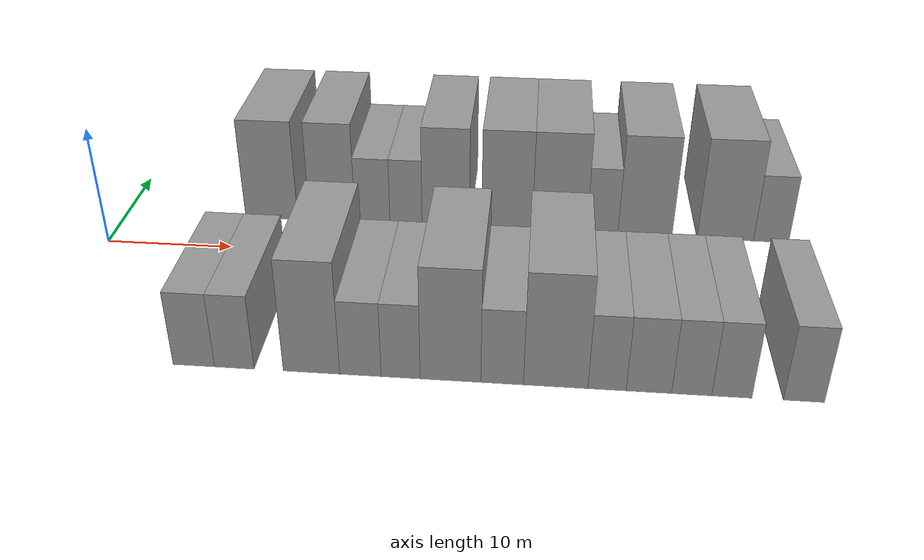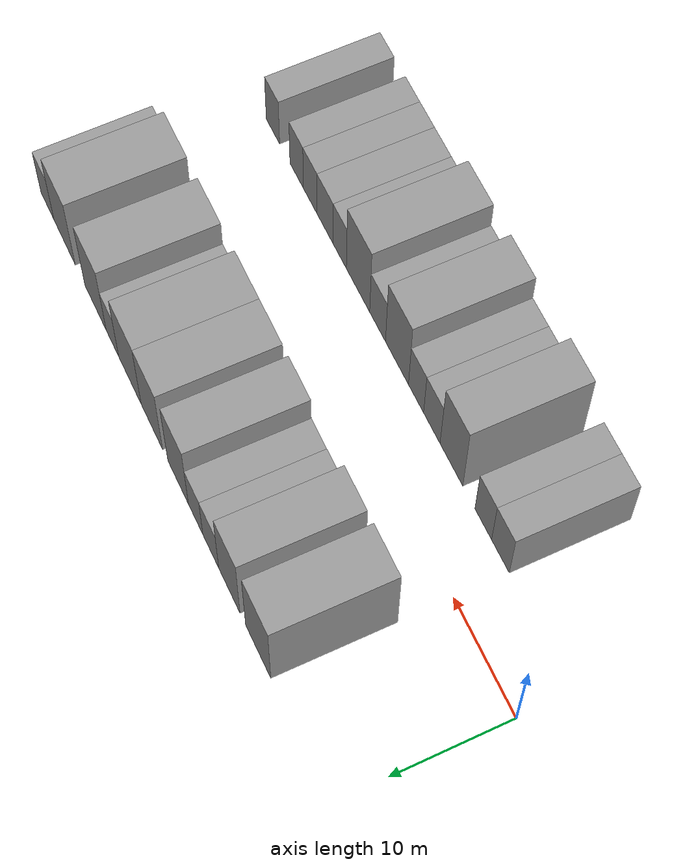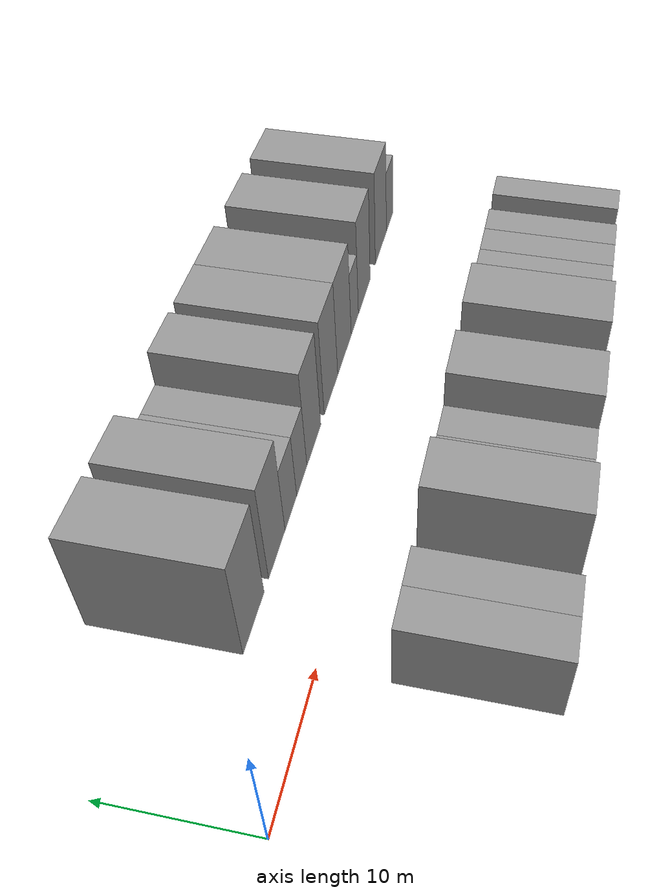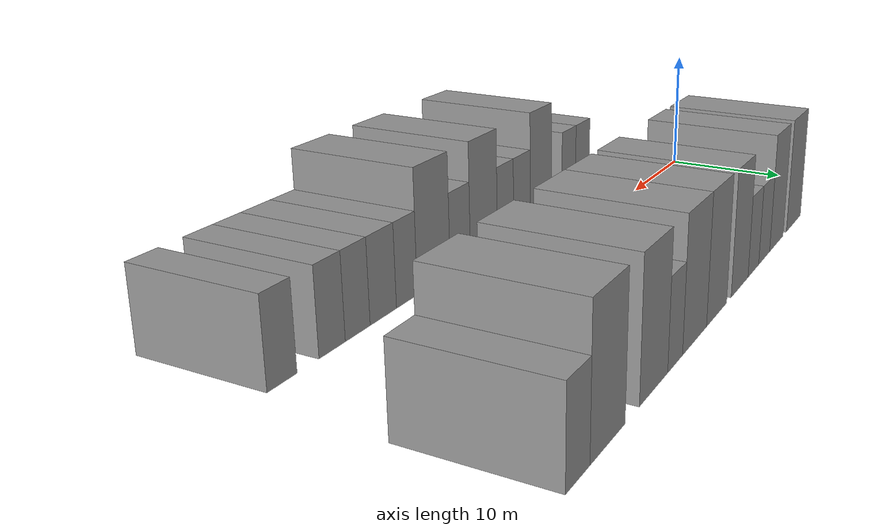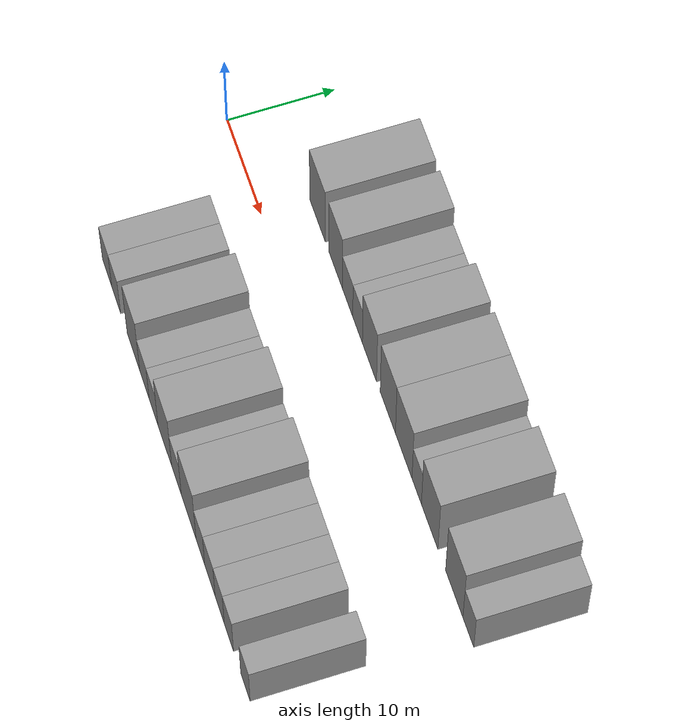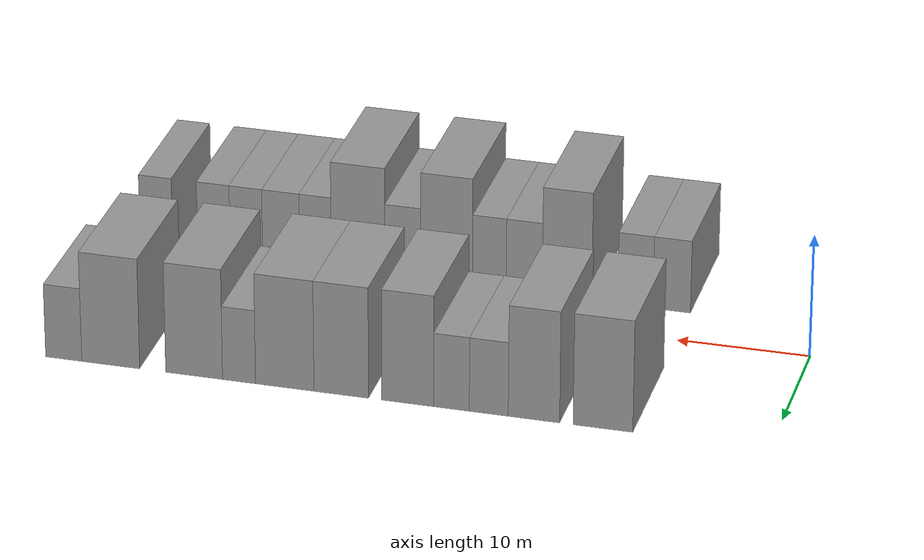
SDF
<sdf version="1.6">
 <world name="default">
  <model name="building_1">
   <static>1</static>
   <pose>12.1952 9.5000 0 0.000000 0.000000 1.570796</pose>
   <link name="link">
    <pose>0 0 4.50 0 0 0</pose>
    <collision name="collision"><geometry><box><size>10.0000 4.3904 9.0000</size></box></geometry></collision>
    <visual name="visual">
     <cast_shadows>0</cast_shadows>
     <geometry><box><size>10.0000 4.3904 9.0000</size></box></geometry>
     <material>
      <script>
       <uri>model://grey_wall/materials/scripts</uri>
       <uri>model://grey_wall/materials/textures</uri>
       <name>vrc/grey_wall</name>
      </script>
     </material>
    </visual>
   </link>
  </model>
  <model name="building_2">
   <static>1</static>
   <pose>17.2943 9.5000 0 0.000000 0.000000 1.570796</pose>
   <link name="link">
    <pose>0 0 4.50 0 0 0</pose>
    <collision name="collision"><geometry><box><size>10.0000 3.8079 9.0000</size></box></geometry></collision>
    <visual name="visual">
     <cast_shadows>0</cast_shadows>
     <geometry><box><size>10.0000 3.8079 9.0000</size></box></geometry>
     <material>
      <script>
       <uri>model://grey_wall/materials/scripts</uri>
       <uri>model://grey_wall/materials/textures</uri>
       <name>vrc/grey_wall</name>
      </script>
     </material>
    </visual>
   </link>
  </model>
  <model name="building_3">
   <static>1</static>
   <pose>20.6465 9.5000 0 0.000000 0.000000 1.570796</pose>
   <link name="link">
    <pose>0 0 3.00 0 0 0</pose>
    <collision name="collision"><geometry><box><size>10.0000 2.8964 6.0000</size></box></geometry></collision>
    <visual name="visual">
     <cast_shadows>0</cast_shadows>
     <geometry><box><size>10.0000 2.8964 6.0000</size></box></geometry>
     <material>
      <script>
       <uri>model://grey_wall/materials/scripts</uri>
       <uri>model://grey_wall/materials/textures</uri>
       <name>vrc/grey_wall</name>
      </script>
     </material>
    </visual>
   </link>
  </model>
  <model name="building_4">
   <static>1</static>
   <pose>23.4257 9.5000 0 0.000000 0.000000 1.570796</pose>
   <link name="link">
    <pose>0 0 3.00 0 0 0</pose>
    <collision name="collision"><geometry><box><size>10.0000 2.6621 6.0000</size></box></geometry></collision>
    <visual name="visual">
     <cast_shadows>0</cast_shadows>
     <geometry><box><size>10.0000 2.6621 6.0000</size></box></geometry>
     <material>
      <script>
       <uri>model://grey_wall/materials/scripts</uri>
       <uri>model://grey_wall/materials/textures</uri>
       <name>vrc/grey_wall</name>
      </script>
     </material>
    </visual>
   </link>
  </model>
  <model name="building_5">
   <static>1</static>
   <pose>26.6972 9.5000 0 0.000000 0.000000 1.570796</pose>
   <link name="link">
    <pose>0 0 4.50 0 0 0</pose>
    <collision name="collision"><geometry><box><size>10.0000 3.8809 9.0000</size></box></geometry></collision>
    <visual name="visual">
     <cast_shadows>0</cast_shadows>
     <geometry><box><size>10.0000 3.8809 9.0000</size></box></geometry>
     <material>
      <script>
       <uri>model://grey_wall/materials/scripts</uri>
       <uri>model://grey_wall/materials/textures</uri>
       <name>vrc/grey_wall</name>
      </script>
     </material>
    </visual>
   </link>
  </model>
  <model name="building_6">
   <static>1</static>
   <pose>31.6975 9.5000 0 0.000000 0.000000 1.570796</pose>
   <link name="link">
    <pose>0 0 4.50 0 0 0</pose>
    <collision name="collision"><geometry><box><size>10.0000 4.1196 9.0000</size></box></geometry></collision>
    <visual name="visual">
     <cast_shadows>0</cast_shadows>
     <geometry><box><size>10.0000 4.1196 9.0000</size></box></geometry>
     <material>
      <script>
       <uri>model://grey_wall/materials/scripts</uri>
       <uri>model://grey_wall/materials/textures</uri>
       <name>vrc/grey_wall</name>
      </script>
     </material>
    </visual>
   </link>
  </model>
  <model name="building_7">
   <static>1</static>
   <pose>35.9691 9.5000 0 0.000000 0.000000 1.570796</pose>
   <link name="link">
    <pose>0 0 4.50 0 0 0</pose>
    <collision name="collision"><geometry><box><size>10.0000 4.4238 9.0000</size></box></geometry></collision>
    <visual name="visual">
     <cast_shadows>0</cast_shadows>
     <geometry><box><size>10.0000 4.4238 9.0000</size></box></geometry>
     <material>
      <script>
       <uri>model://grey_wall/materials/scripts</uri>
       <uri>model://grey_wall/materials/textures</uri>
       <name>vrc/grey_wall</name>
      </script>
     </material>
    </visual>
   </link>
  </model>
  <model name="building_8">
   <static>1</static>
   <pose>39.4314 9.5000 0 0.000000 0.000000 1.570796</pose>
   <link name="link">
    <pose>0 0 3.00 0 0 0</pose>
    <collision name="collision"><geometry><box><size>10.0000 2.5007 6.0000</size></box></geometry></collision>
    <visual name="visual">
     <cast_shadows>0</cast_shadows>
     <geometry><box><size>10.0000 2.5007 6.0000</size></box></geometry>
     <material>
      <script>
       <uri>model://grey_wall/materials/scripts</uri>
       <uri>model://grey_wall/materials/textures</uri>
       <name>vrc/grey_wall</name>
      </script>
     </material>
    </visual>
   </link>
  </model>
  <model name="building_9">
   <static>1</static>
   <pose>42.8500 9.5000 0 0.000000 0.000000 1.570796</pose>
   <link name="link">
    <pose>0 0 4.50 0 0 0</pose>
    <collision name="collision"><geometry><box><size>10.0000 4.3365 9.0000</size></box></geometry></collision>
    <visual name="visual">
     <cast_shadows>0</cast_shadows>
     <geometry><box><size>10.0000 4.3365 9.0000</size></box></geometry>
     <material>
      <script>
       <uri>model://grey_wall/materials/scripts</uri>
       <uri>model://grey_wall/materials/textures</uri>
       <name>vrc/grey_wall</name>
      </script>
     </material>
    </visual>
   </link>
  </model>
  <model name="building_10">
   <static>1</static>
   <pose>49.2461 9.5000 0 0.000000 0.000000 1.570796</pose>
   <link name="link">
    <pose>0 0 4.50 0 0 0</pose>
    <collision name="collision"><geometry><box><size>10.0000 4.4557 9.0000</size></box></geometry></collision>
    <visual name="visual">
     <cast_shadows>0</cast_shadows>
     <geometry><box><size>10.0000 4.4557 9.0000</size></box></geometry>
     <material>
      <script>
       <uri>model://grey_wall/materials/scripts</uri>
       <uri>model://grey_wall/materials/textures</uri>
       <name>vrc/grey_wall</name>
      </script>
     </material>
    </visual>
   </link>
  </model>
  <model name="building_11">
   <static>1</static>
   <pose>52.8624 9.5000 0 0.000000 0.000000 1.570796</pose>
   <link name="link">
    <pose>0 0 3.00 0 0 0</pose>
    <collision name="collision"><geometry><box><size>10.0000 2.7770 6.0000</size></box></geometry></collision>
    <visual name="visual">
     <cast_shadows>0</cast_shadows>
     <geometry><box><size>10.0000 2.7770 6.0000</size></box></geometry>
     <material>
      <script>
       <uri>model://grey_wall/materials/scripts</uri>
       <uri>model://grey_wall/materials/textures</uri>
       <name>vrc/grey_wall</name>
      </script>
     </material>
    </visual>
   </link>
  </model>
  <model name="building_48">
   <static>1</static>
   <pose>11.4273 -9.5000 0 0.000000 0.000000 1.570796</pose>
   <link name="link">
    <pose>0 0 3.00 0 0 0</pose>
    <collision name="collision"><geometry><box><size>10.0000 2.8546 6.0000</size></box></geometry></collision>
    <visual name="visual">
     <cast_shadows>0</cast_shadows>
     <geometry><box><size>10.0000 2.8546 6.0000</size></box></geometry>
     <material>
      <script>
       <uri>model://grey_wall/materials/scripts</uri>
       <uri>model://grey_wall/materials/textures</uri>
       <name>vrc/grey_wall</name>
      </script>
     </material>
    </visual>
   </link>
  </model>
  <model name="building_49">
   <static>1</static>
   <pose>14.2122 -9.5000 0 0.000000 0.000000 1.570796</pose>
   <link name="link">
    <pose>0 0 3.00 0 0 0</pose>
    <collision name="collision"><geometry><box><size>10.0000 2.7153 6.0000</size></box></geometry></collision>
    <visual name="visual">
     <cast_shadows>0</cast_shadows>
     <geometry><box><size>10.0000 2.7153 6.0000</size></box></geometry>
     <material>
      <script>
       <uri>model://grey_wall/materials/scripts</uri>
       <uri>model://grey_wall/materials/textures</uri>
       <name>vrc/grey_wall</name>
      </script>
     </material>
    </visual>
   </link>
  </model>
  <model name="building_50">
   <static>1</static>
   <pose>19.4815 -9.5000 0 0.000000 0.000000 1.570796</pose>
   <link name="link">
    <pose>0 0 4.50 0 0 0</pose>
    <collision name="collision"><geometry><box><size>10.0000 3.8231 9.0000</size></box></geometry></collision>
    <visual name="visual">
     <cast_shadows>0</cast_shadows>
     <geometry><box><size>10.0000 3.8231 9.0000</size></box></geometry>
     <material>
      <script>
       <uri>model://grey_wall/materials/scripts</uri>
       <uri>model://grey_wall/materials/textures</uri>
       <name>vrc/grey_wall</name>
      </script>
     </material>
    </visual>
   </link>
  </model>
  <model name="building_51">
   <static>1</static>
   <pose>22.7909 -9.5000 0 0.000000 0.000000 1.570796</pose>
   <link name="link">
    <pose>0 0 3.00 0 0 0</pose>
    <collision name="collision"><geometry><box><size>10.0000 2.7958 6.0000</size></box></geometry></collision>
    <visual name="visual">
     <cast_shadows>0</cast_shadows>
     <geometry><box><size>10.0000 2.7958 6.0000</size></box></geometry>
     <material>
      <script>
       <uri>model://grey_wall/materials/scripts</uri>
       <uri>model://grey_wall/materials/textures</uri>
       <name>vrc/grey_wall</name>
      </script>
     </material>
    </visual>
   </link>
  </model>
  <model name="building_52">
   <static>1</static>
   <pose>25.4921 -9.5000 0 0.000000 0.000000 1.570796</pose>
   <link name="link">
    <pose>0 0 3.00 0 0 0</pose>
    <collision name="collision"><geometry><box><size>10.0000 2.6066 6.0000</size></box></geometry></collision>
    <visual name="visual">
     <cast_shadows>0</cast_shadows>
     <geometry><box><size>10.0000 2.6066 6.0000</size></box></geometry>
     <material>
      <script>
       <uri>model://grey_wall/materials/scripts</uri>
       <uri>model://grey_wall/materials/textures</uri>
       <name>vrc/grey_wall</name>
      </script>
     </material>
    </visual>
   </link>
  </model>
  <model name="building_53">
   <static>1</static>
   <pose>28.8129 -9.5000 0 0.000000 0.000000 1.570796</pose>
   <link name="link">
    <pose>0 0 4.50 0 0 0</pose>
    <collision name="collision"><geometry><box><size>10.0000 4.0350 9.0000</size></box></geometry></collision>
    <visual name="visual">
     <cast_shadows>0</cast_shadows>
     <geometry><box><size>10.0000 4.0350 9.0000</size></box></geometry>
     <material>
      <script>
       <uri>model://grey_wall/materials/scripts</uri>
       <uri>model://grey_wall/materials/textures</uri>
       <name>vrc/grey_wall</name>
      </script>
     </material>
    </visual>
   </link>
  </model>
  <model name="building_54">
   <static>1</static>
   <pose>32.2364 -9.5000 0 0.000000 0.000000 1.570796</pose>
   <link name="link">
    <pose>0 0 3.00 0 0 0</pose>
    <collision name="collision"><geometry><box><size>10.0000 2.8119 6.0000</size></box></geometry></collision>
    <visual name="visual">
     <cast_shadows>0</cast_shadows>
     <geometry><box><size>10.0000 2.8119 6.0000</size></box></geometry>
     <material>
      <script>
       <uri>model://grey_wall/materials/scripts</uri>
       <uri>model://grey_wall/materials/textures</uri>
       <name>vrc/grey_wall</name>
      </script>
     </material>
    </visual>
   </link>
  </model>
  <model name="building_55">
   <static>1</static>
   <pose>35.7567 -9.5000 0 0.000000 0.000000 1.570796</pose>
   <link name="link">
    <pose>0 0 4.50 0 0 0</pose>
    <collision name="collision"><geometry><box><size>10.0000 4.2289 9.0000</size></box></geometry></collision>
    <visual name="visual">
     <cast_shadows>0</cast_shadows>
     <geometry><box><size>10.0000 4.2289 9.0000</size></box></geometry>
     <material>
      <script>
       <uri>model://grey_wall/materials/scripts</uri>
       <uri>model://grey_wall/materials/textures</uri>
       <name>vrc/grey_wall</name>
      </script>
     </material>
    </visual>
   </link>
  </model>
  <model name="building_56">
   <static>1</static>
   <pose>39.1147 -9.5000 0 0.000000 0.000000 1.570796</pose>
   <link name="link">
    <pose>0 0 3.00 0 0 0</pose>
    <collision name="collision"><geometry><box><size>10.0000 2.4870 6.0000</size></box></geometry></collision>
    <visual name="visual">
     <cast_shadows>0</cast_shadows>
     <geometry><box><size>10.0000 2.4870 6.0000</size></box></geometry>
     <material>
      <script>
       <uri>model://grey_wall/materials/scripts</uri>
       <uri>model://grey_wall/materials/textures</uri>
       <name>vrc/grey_wall</name>
      </script>
     </material>
    </visual>
   </link>
  </model>
  <model name="building_57">
   <static>1</static>
   <pose>41.8252 -9.5000 0 0.000000 0.000000 1.570796</pose>
   <link name="link">
    <pose>0 0 3.00 0 0 0</pose>
    <collision name="collision"><geometry><box><size>10.0000 2.9340 6.0000</size></box></geometry></collision>
    <visual name="visual">
     <cast_shadows>0</cast_shadows>
     <geometry><box><size>10.0000 2.9340 6.0000</size></box></geometry>
     <material>
      <script>
       <uri>model://grey_wall/materials/scripts</uri>
       <uri>model://grey_wall/materials/textures</uri>
       <name>vrc/grey_wall</name>
      </script>
     </material>
    </visual>
   </link>
  </model>
  <model name="building_58">
   <static>1</static>
   <pose>44.5836 -9.5000 0 0.000000 0.000000 1.570796</pose>
   <link name="link">
    <pose>0 0 3.00 0 0 0</pose>
    <collision name="collision"><geometry><box><size>10.0000 2.5829 6.0000</size></box></geometry></collision>
    <visual name="visual">
     <cast_shadows>0</cast_shadows>
     <geometry><box><size>10.0000 2.5829 6.0000</size></box></geometry>
     <material>
      <script>
       <uri>model://grey_wall/materials/scripts</uri>
       <uri>model://grey_wall/materials/textures</uri>
       <name>vrc/grey_wall</name>
      </script>
     </material>
    </visual>
   </link>
  </model>
  <model name="building_59">
   <static>1</static>
   <pose>47.1597 -9.5000 0 0.000000 0.000000 1.570796</pose>
   <link name="link">
    <pose>0 0 3.00 0 0 0</pose>
    <collision name="collision"><geometry><box><size>10.0000 2.5693 6.0000</size></box></geometry></collision>
    <visual name="visual">
     <cast_shadows>0</cast_shadows>
     <geometry><box><size>10.0000 2.5693 6.0000</size></box></geometry>
     <material>
      <script>
       <uri>model://grey_wall/materials/scripts</uri>
       <uri>model://grey_wall/materials/textures</uri>
       <name>vrc/grey_wall</name>
      </script>
     </material>
    </visual>
   </link>
  </model>
  <model name="building_60">
   <static>1</static>
   <pose>51.7449 -9.5000 0 0.000000 0.000000 1.570796</pose>
   <link name="link">
    <pose>0 0 3.00 0 0 0</pose>
    <collision name="collision"><geometry><box><size>10.0000 2.6011 6.0000</size></box></geometry></collision>
    <visual name="visual">
     <cast_shadows>0</cast_shadows>
     <geometry><box><size>10.0000 2.6011 6.0000</size></box></geometry>
     <material>
      <script>
       <uri>model://grey_wall/materials/scripts</uri>
       <uri>model://grey_wall/materials/textures</uri>
       <name>vrc/grey_wall</name>
      </script>
     </material>
    </visual>
   </link>
  </model>
 </world>
</sdf>
